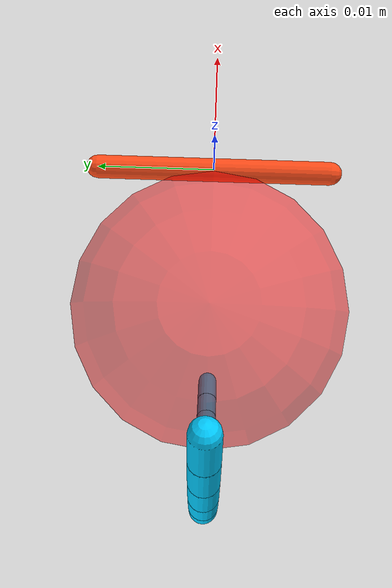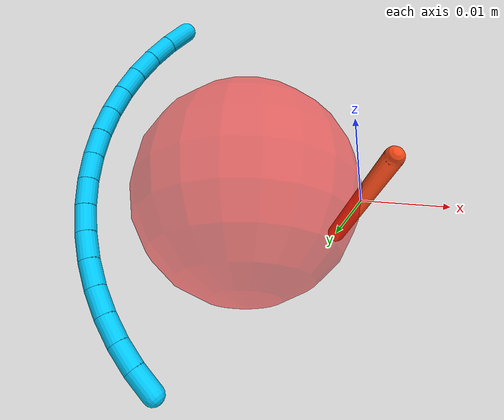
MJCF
<mujoco><option gravity="0 0 0" timestep="0.004166666666666667"/><worldbody><geom name="g384" type="capsule" fromto="-0.021257787497000115 1.6049712464756758e-16 0.017445815341699925 -0.019445436453000082 1.7648323532348846e-17 0.019445436455499992" size="0.001" margin=".0005" gap=".0005" rgba="0 .8 1 1"/><geom name="g385" type="capsule" fromto="-0.022865414364000084 2.4236756903907204e-16 0.01527818142679991 -0.021257787442000128 1.0690606258750431e-16 0.01744581529569997" size="0.001" margin=".0005" gap=".0005" rgba="0 .8 1 1"/><geom name="g386" type="capsule" fromto="-0.024252834764000017 1.1547121460944567e-16 0.012963410259099934 -0.02286541434400015 1.3415619897969607e-16 0.015278181411699955" size="0.001" margin=".0005" gap=".0005" rgba="0 .8 1 1"/><geom name="g387" type="capsule" fromto="-0.025406687132000047 3.040710931128278e-17 0.010523794384299923 -0.024252834782000212 1.9841398787872233e-16 0.012963410268499958" size="0.001" margin=".0005" gap=".0005" rgba="0 .8 1 1"/><geom name="g388" type="capsule" fromto="-0.02631585922699997 1.1882369166839817e-16 0.007982828622549993 -0.025406687150000048 -5.334086454827777e-17 0.010523794392000008" size="0.001" margin=".0005" gap=".0005" rgba="0 .8 1 1"/><geom name="g389" type="capsule" fromto="-0.026971595217000117 1.2566224705696718e-16 0.0053649838568799995 -0.02631585922700007 2.744598461505305e-16 0.007982828623059962" size="0.001" margin=".0005" gap=".0005" rgba="0 .8 1 1"/><geom name="g390" type="capsule" fromto="-0.027367579992000055 5.1060579149883236e-17 0.0026954713602798854 -0.026971595203000055 1.1371202374799181e-16 0.005364983854219876" size="0.001" margin=".0005" gap=".0005" rgba="0 .8 1 1"/><geom name="g391" type="capsule" fromto="-0.027500000001000034 2.916982688938702e-17 6.441235528443329e-14 -0.027367579982000005 -1.6404274920936465e-17 0.0026954713589999965" size="0.001" margin=".0005" gap=".0005" rgba="0 .8 1 1"/><geom name="g392" type="capsule" fromto="-0.027367579982000116 2.1105770425963426e-16 -0.0026954713590001335 -0.027500000001000082 1.4328317292164818e-16 -6.449204418698437e-14" size="0.001" margin=".0005" gap=".0005" rgba="0 .8 1 1"/><geom name="g393" type="capsule" fromto="-0.026971595203000145 -7.636939899511842e-17 -0.005364983854220055 -0.027367579992000055 9.421672803321276e-17 -0.002695471360280045" size="0.001" margin=".0005" gap=".0005" rgba="0 .8 1 1"/><geom name="g394" type="capsule" fromto="-0.026315859227000023 8.39871900138253e-17 -0.007982828623060094 -0.026971595217000027 3.0791719790861555e-16 -0.005364983856880036" size="0.001" margin=".0005" gap=".0005" rgba="0 .8 1 1"/><geom name="g395" type="capsule" fromto="-0.02540668715000006 1.4702216927574934e-17 -0.010523794392000099 -0.026315859227000072 2.2293951643076463e-17 -0.00798282862255013" size="0.001" margin=".0005" gap=".0005" rgba="0 .8 1 1"/><geom name="g396" type="capsule" fromto="-0.024252834782000087 1.2118130682533725e-16 -0.012963410268500133 -0.025406687131999978 4.34235022213822e-17 -0.010523794384300083" size="0.001" margin=".0005" gap=".0005" rgba="0 .8 1 1"/><geom name="g397" type="capsule" fromto="-0.022865414344000135 2.368451525625476e-16 -0.015278181411700023 -0.02425283476400007 1.1747854289285702e-16 -0.012963410259100099" size="0.001" margin=".0005" gap=".0005" rgba="0 .8 1 1"/><geom name="g398" type="capsule" fromto="-0.021257787442000093 3.6028093141389536e-17 -0.017445815295699992 -0.0228654143640001 4.896349642771288e-17 -0.0152781814268001" size="0.001" margin=".0005" gap=".0005" rgba="0 .8 1 1"/><geom name="g399" type="capsule" fromto="-0.01944543645300002 2.532487915110198e-16 -0.019445436455500037 -0.021257787497000066 1.650427840360178e-16 -0.017445815341700067" size="0.001" margin=".0005" gap=".0005" rgba="0 .8 1 1"/><geom name="fruit_visual_only" type="sphere" pos="-.012 0 0" size=".0116" contype="0" conaffinity="0" rgba="1 0 0 .5"/><body><freejoint/><geom name="glb_col_Attachment_01" type="capsule" fromto="0.0 -.01 0 0.0 .01 0" size="0.001" mass=".01" margin=".0005" gap=".0005" rgba="1 .3 .1 1"/></body></worldbody></mujoco>
